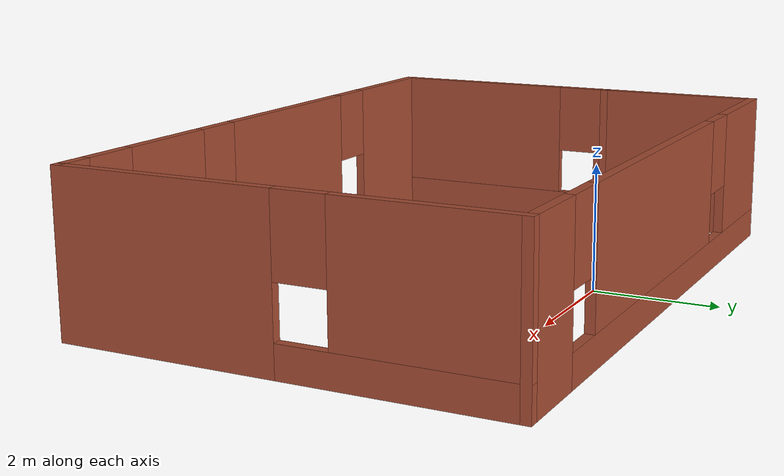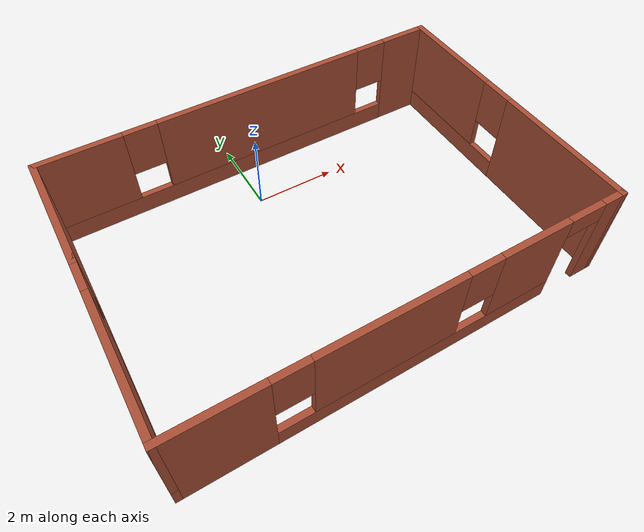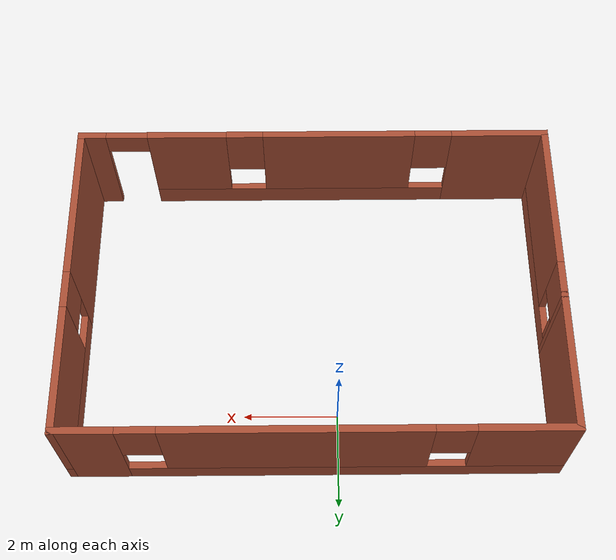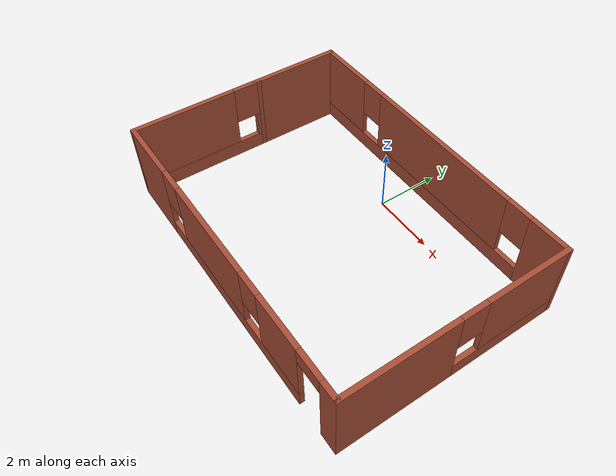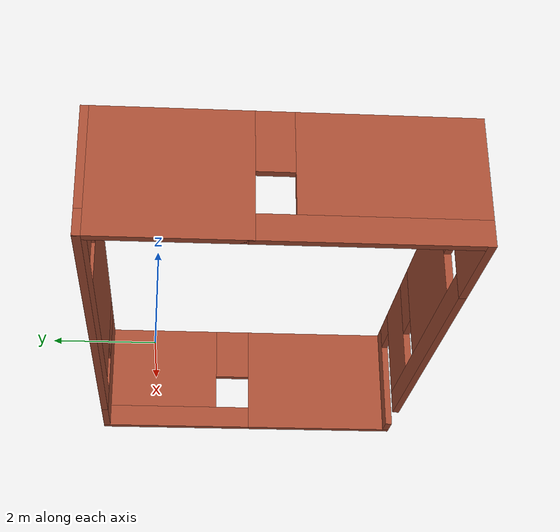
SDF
<?xml version='1.0'?>
<sdf version='1.7'>
  <model name='building_editor'>
    <pose>0.484194 -2.19185 0 0 -0 0</pose>
    <link name='Wall_16'>
      <pose>-5.05 -1.375 0 0 -0 -1.5708</pose>
      <visual name='Wall_16_Visual_0'>
        <pose>-2.05619 0 1.25 0 -0 0</pose>
        <geometry>
          <box>
            <size>0.137612 0.15 2.5</size>
          </box>
        </geometry>
        <material>
          <script>
            <uri>file://media/materials/scripts/gazebo.material</uri>
            <name>Gazebo/Bricks</name>
          </script>
          <ambient>1 1 1 1</ambient>
        </material>
        <meta>
          <layer>0</layer>
        </meta>
      </visual>
      <collision name='Wall_16_Collision_0'>
        <geometry>
          <box>
            <size>0.137612 0.15 2.5</size>
          </box>
        </geometry>
        <pose>-2.05619 0 1.25 0 -0 0</pose>
      </collision>
      <visual name='Wall_16_Visual_1'>
        <pose>0.068806 0 0.25 0 -0 0</pose>
        <geometry>
          <box>
            <size>4.11239 0.15 0.5</size>
          </box>
        </geometry>
        <material>
          <script>
            <uri>file://media/materials/scripts/gazebo.material</uri>
            <name>Gazebo/Bricks</name>
          </script>
          <ambient>1 1 1 1</ambient>
        </material>
        <meta>
          <layer>0</layer>
        </meta>
      </visual>
      <collision name='Wall_16_Collision_1'>
        <geometry>
          <box>
            <size>4.11239 0.15 0.5</size>
          </box>
        </geometry>
        <pose>0.068806 0 0.25 0 -0 0</pose>
      </collision>
      <visual name='Wall_16_Visual_2'>
        <pose>0.468806 0 1.5 0 -0 0</pose>
        <geometry>
          <box>
            <size>3.31239 0.15 2</size>
          </box>
        </geometry>
        <material>
          <script>
            <uri>file://media/materials/scripts/gazebo.material</uri>
            <name>Gazebo/Bricks</name>
          </script>
          <ambient>1 1 1 1</ambient>
        </material>
        <meta>
          <layer>0</layer>
        </meta>
      </visual>
      <collision name='Wall_16_Collision_2'>
        <geometry>
          <box>
            <size>3.31239 0.15 2</size>
          </box>
        </geometry>
        <pose>0.468806 0 1.5 0 -0 0</pose>
      </collision>
      <visual name='Wall_16_Visual_3'>
        <pose>-1.58739 0 1.9 0 -0 0</pose>
        <geometry>
          <box>
            <size>0.8 0.15 1.2</size>
          </box>
        </geometry>
        <material>
          <script>
            <uri>file://media/materials/scripts/gazebo.material</uri>
            <name>Gazebo/Bricks</name>
          </script>
          <ambient>1 1 1 1</ambient>
        </material>
        <meta>
          <layer>0</layer>
        </meta>
      </visual>
      <collision name='Wall_16_Collision_3'>
        <geometry>
          <box>
            <size>0.8 0.15 1.2</size>
          </box>
        </geometry>
        <pose>-1.58739 0 1.9 0 -0 0</pose>
      </collision>
    </link>
    <link name='Wall_17'>
      <pose>0 -3.425 0 0 -0 0</pose>
      <visual name='Wall_17_Visual_0'>
        <pose>-4.07314 0 1.25 0 -0 0</pose>
        <geometry>
          <box>
            <size>2.10371 0.15 2.5</size>
          </box>
        </geometry>
        <material>
          <script>
            <uri>file://media/materials/scripts/gazebo.material</uri>
            <name>Gazebo/Bricks</name>
          </script>
          <ambient>1 1 1 1</ambient>
        </material>
        <meta>
          <layer>0</layer>
        </meta>
      </visual>
      <collision name='Wall_17_Collision_0'>
        <geometry>
          <box>
            <size>2.10371 0.15 2.5</size>
          </box>
        </geometry>
        <pose>-4.07314 0 1.25 0 -0 0</pose>
      </collision>
      <visual name='Wall_17_Visual_1'>
        <pose>4.81923 0 1.25 0 -0 0</pose>
        <geometry>
          <box>
            <size>0.61154 0.15 2.5</size>
          </box>
        </geometry>
        <material>
          <script>
            <uri>file://media/materials/scripts/gazebo.material</uri>
            <name>Gazebo/Bricks</name>
          </script>
          <ambient>1 1 1 1</ambient>
        </material>
        <meta>
          <layer>0</layer>
        </meta>
      </visual>
      <collision name='Wall_17_Collision_1'>
        <geometry>
          <box>
            <size>0.61154 0.15 2.5</size>
          </box>
        </geometry>
        <pose>4.81923 0 1.25 0 -0 0</pose>
      </collision>
      <visual name='Wall_17_Visual_2'>
        <pose>0.296087 0 0.25 0 -0 0</pose>
        <geometry>
          <box>
            <size>6.63475 0.15 0.5</size>
          </box>
        </geometry>
        <material>
          <script>
            <uri>file://media/materials/scripts/gazebo.material</uri>
            <name>Gazebo/Bricks</name>
          </script>
          <ambient>1 1 1 1</ambient>
        </material>
        <meta>
          <layer>0</layer>
        </meta>
      </visual>
      <collision name='Wall_17_Collision_2'>
        <geometry>
          <box>
            <size>6.63475 0.15 0.5</size>
          </box>
        </geometry>
        <pose>0.296087 0 0.25 0 -0 0</pose>
      </collision>
      <visual name='Wall_17_Visual_3'>
        <pose>-0.562662 0 1.5 0 -0 0</pose>
        <geometry>
          <box>
            <size>3.31725 0.15 2</size>
          </box>
        </geometry>
        <material>
          <script>
            <uri>file://media/materials/scripts/gazebo.material</uri>
            <name>Gazebo/Bricks</name>
          </script>
          <ambient>1 1 1 1</ambient>
        </material>
        <meta>
          <layer>0</layer>
        </meta>
      </visual>
      <collision name='Wall_17_Collision_3'>
        <geometry>
          <box>
            <size>3.31725 0.15 2</size>
          </box>
        </geometry>
        <pose>-0.562662 0 1.5 0 -0 0</pose>
      </collision>
      <visual name='Wall_17_Visual_4'>
        <pose>2.75471 0 1.5 0 -0 0</pose>
        <geometry>
          <box>
            <size>1.7175 0.15 2</size>
          </box>
        </geometry>
        <material>
          <script>
            <uri>file://media/materials/scripts/gazebo.material</uri>
            <name>Gazebo/Bricks</name>
          </script>
          <ambient>1 1 1 1</ambient>
        </material>
        <meta>
          <layer>0</layer>
        </meta>
      </visual>
      <collision name='Wall_17_Collision_4'>
        <geometry>
          <box>
            <size>1.7175 0.15 2</size>
          </box>
        </geometry>
        <pose>2.75471 0 1.5 0 -0 0</pose>
      </collision>
      <visual name='Wall_17_Visual_5'>
        <pose>-2.62129 0 1.9 0 -0 0</pose>
        <geometry>
          <box>
            <size>0.8 0.15 1.2</size>
          </box>
        </geometry>
        <material>
          <script>
            <uri>file://media/materials/scripts/gazebo.material</uri>
            <name>Gazebo/Bricks</name>
          </script>
          <ambient>1 1 1 1</ambient>
        </material>
        <meta>
          <layer>0</layer>
        </meta>
      </visual>
      <collision name='Wall_17_Collision_5'>
        <geometry>
          <box>
            <size>0.8 0.15 1.2</size>
          </box>
        </geometry>
        <pose>-2.62129 0 1.9 0 -0 0</pose>
      </collision>
      <visual name='Wall_17_Visual_6'>
        <pose>1.49596 0 1.9 0 -0 0</pose>
        <geometry>
          <box>
            <size>0.8 0.15 1.2</size>
          </box>
        </geometry>
        <material>
          <script>
            <uri>file://media/materials/scripts/gazebo.material</uri>
            <name>Gazebo/Bricks</name>
          </script>
          <ambient>1 1 1 1</ambient>
        </material>
        <meta>
          <layer>0</layer>
        </meta>
      </visual>
      <collision name='Wall_17_Collision_6'>
        <geometry>
          <box>
            <size>0.8 0.15 1.2</size>
          </box>
        </geometry>
        <pose>1.49596 0 1.9 0 -0 0</pose>
      </collision>
      <visual name='Wall_17_Visual_7'>
        <pose>4.06346 0 2.25 0 -0 0</pose>
        <geometry>
          <box>
            <size>0.9 0.15 0.5</size>
          </box>
        </geometry>
        <material>
          <script>
            <uri>file://media/materials/scripts/gazebo.material</uri>
            <name>Gazebo/Bricks</name>
          </script>
          <ambient>1 1 1 1</ambient>
        </material>
        <meta>
          <layer>0</layer>
        </meta>
      </visual>
      <collision name='Wall_17_Collision_7'>
        <geometry>
          <box>
            <size>0.9 0.15 0.5</size>
          </box>
        </geometry>
        <pose>4.06346 0 2.25 0 -0 0</pose>
      </collision>
    </link>
    <link name='Wall_18'>
      <pose>5.05 0 0 0 -0 1.5708</pose>
      <visual name='Wall_18_Visual_0'>
        <pose>-1.76285 0 1.25 0 -0 0</pose>
        <geometry>
          <box>
            <size>3.4743 0.15 2.5</size>
          </box>
        </geometry>
        <material>
          <script>
            <uri>file://media/materials/scripts/gazebo.material</uri>
            <name>Gazebo/Bricks</name>
          </script>
          <ambient>1 1 1 1</ambient>
        </material>
        <meta>
          <layer>0</layer>
        </meta>
      </visual>
      <collision name='Wall_18_Collision_0'>
        <geometry>
          <box>
            <size>3.4743 0.15 2.5</size>
          </box>
        </geometry>
        <pose>-1.76285 0 1.25 0 -0 0</pose>
      </collision>
      <visual name='Wall_18_Visual_1'>
        <pose>1.73715 0 0.25 0 -0 0</pose>
        <geometry>
          <box>
            <size>3.5257 0.15 0.5</size>
          </box>
        </geometry>
        <material>
          <script>
            <uri>file://media/materials/scripts/gazebo.material</uri>
            <name>Gazebo/Bricks</name>
          </script>
          <ambient>1 1 1 1</ambient>
        </material>
        <meta>
          <layer>0</layer>
        </meta>
      </visual>
      <collision name='Wall_18_Collision_1'>
        <geometry>
          <box>
            <size>3.5257 0.15 0.5</size>
          </box>
        </geometry>
        <pose>1.73715 0 0.25 0 -0 0</pose>
      </collision>
      <visual name='Wall_18_Visual_2'>
        <pose>2.13715 0 1.5 0 -0 0</pose>
        <geometry>
          <box>
            <size>2.7257 0.15 2</size>
          </box>
        </geometry>
        <material>
          <script>
            <uri>file://media/materials/scripts/gazebo.material</uri>
            <name>Gazebo/Bricks</name>
          </script>
          <ambient>1 1 1 1</ambient>
        </material>
        <meta>
          <layer>0</layer>
        </meta>
      </visual>
      <collision name='Wall_18_Collision_2'>
        <geometry>
          <box>
            <size>2.7257 0.15 2</size>
          </box>
        </geometry>
        <pose>2.13715 0 1.5 0 -0 0</pose>
      </collision>
      <visual name='Wall_18_Visual_3'>
        <pose>0.374302 0 1.9 0 -0 0</pose>
        <geometry>
          <box>
            <size>0.8 0.15 1.2</size>
          </box>
        </geometry>
        <material>
          <script>
            <uri>file://media/materials/scripts/gazebo.material</uri>
            <name>Gazebo/Bricks</name>
          </script>
          <ambient>1 1 1 1</ambient>
        </material>
        <meta>
          <layer>0</layer>
        </meta>
      </visual>
      <collision name='Wall_18_Collision_3'>
        <geometry>
          <box>
            <size>0.8 0.15 1.2</size>
          </box>
        </geometry>
        <pose>0.374302 0 1.9 0 -0 0</pose>
      </collision>
    </link>
    <link name='Wall_19'>
      <pose>0 3.425 0 0 -0 3.14159</pose>
      <visual name='Wall_19_Visual_0'>
        <pose>-4.48197 0 1.25 0 -0 0</pose>
        <geometry>
          <box>
            <size>1.28607 0.15 2.5</size>
          </box>
        </geometry>
        <material>
          <script>
            <uri>file://media/materials/scripts/gazebo.material</uri>
            <name>Gazebo/Bricks</name>
          </script>
          <ambient>1 1 1 1</ambient>
        </material>
        <meta>
          <layer>0</layer>
        </meta>
      </visual>
      <collision name='Wall_19_Collision_0'>
        <geometry>
          <box>
            <size>1.28607 0.15 2.5</size>
          </box>
        </geometry>
        <pose>-4.48197 0 1.25 0 -0 0</pose>
      </collision>
      <visual name='Wall_19_Visual_1'>
        <pose>0.643033 0 0.25 0 -0 0</pose>
        <geometry>
          <box>
            <size>8.96393 0.15 0.5</size>
          </box>
        </geometry>
        <material>
          <script>
            <uri>file://media/materials/scripts/gazebo.material</uri>
            <name>Gazebo/Bricks</name>
          </script>
          <ambient>1 1 1 1</ambient>
        </material>
        <meta>
          <layer>0</layer>
        </meta>
      </visual>
      <collision name='Wall_19_Collision_1'>
        <geometry>
          <box>
            <size>8.96393 0.15 0.5</size>
          </box>
        </geometry>
        <pose>0.643033 0 0.25 0 -0 0</pose>
      </collision>
      <visual name='Wall_19_Visual_2'>
        <pose>-0.374128 0 1.5 0 -0 0</pose>
        <geometry>
          <box>
            <size>5.32961 0.15 2</size>
          </box>
        </geometry>
        <material>
          <script>
            <uri>file://media/materials/scripts/gazebo.material</uri>
            <name>Gazebo/Bricks</name>
          </script>
          <ambient>1 1 1 1</ambient>
        </material>
        <meta>
          <layer>0</layer>
        </meta>
      </visual>
      <collision name='Wall_19_Collision_2'>
        <geometry>
          <box>
            <size>5.32961 0.15 2</size>
          </box>
        </geometry>
        <pose>-0.374128 0 1.5 0 -0 0</pose>
      </collision>
      <visual name='Wall_19_Visual_3'>
        <pose>4.10784 0 1.5 0 -0 0</pose>
        <geometry>
          <box>
            <size>2.03432 0.15 2</size>
          </box>
        </geometry>
        <material>
          <script>
            <uri>file://media/materials/scripts/gazebo.material</uri>
            <name>Gazebo/Bricks</name>
          </script>
          <ambient>1 1 1 1</ambient>
        </material>
        <meta>
          <layer>0</layer>
        </meta>
      </visual>
      <collision name='Wall_19_Collision_3'>
        <geometry>
          <box>
            <size>2.03432 0.15 2</size>
          </box>
        </geometry>
        <pose>4.10784 0 1.5 0 -0 0</pose>
      </collision>
      <visual name='Wall_19_Visual_4'>
        <pose>-3.43893 0 1.9 0 -0 0</pose>
        <geometry>
          <box>
            <size>0.8 0.15 1.2</size>
          </box>
        </geometry>
        <material>
          <script>
            <uri>file://media/materials/scripts/gazebo.material</uri>
            <name>Gazebo/Bricks</name>
          </script>
          <ambient>1 1 1 1</ambient>
        </material>
        <meta>
          <layer>0</layer>
        </meta>
      </visual>
      <collision name='Wall_19_Collision_4'>
        <geometry>
          <box>
            <size>0.8 0.15 1.2</size>
          </box>
        </geometry>
        <pose>-3.43893 0 1.9 0 -0 0</pose>
      </collision>
      <visual name='Wall_19_Visual_5'>
        <pose>2.69068 0 1.9 0 -0 0</pose>
        <geometry>
          <box>
            <size>0.8 0.15 1.2</size>
          </box>
        </geometry>
        <material>
          <script>
            <uri>file://media/materials/scripts/gazebo.material</uri>
            <name>Gazebo/Bricks</name>
          </script>
          <ambient>1 1 1 1</ambient>
        </material>
        <meta>
          <layer>0</layer>
        </meta>
      </visual>
      <collision name='Wall_19_Collision_5'>
        <geometry>
          <box>
            <size>0.8 0.15 1.2</size>
          </box>
        </geometry>
        <pose>2.69068 0 1.9 0 -0 0</pose>
      </collision>
    </link>
    <link name='Wall_20'>
      <collision name='Wall_20_Collision'>
        <geometry>
          <box>
            <size>3 0.15 2.5</size>
          </box>
        </geometry>
        <pose>0 0 1.25 0 -0 0</pose>
      </collision>
      <visual name='Wall_20_Visual'>
        <pose>0 0 1.25 0 -0 0</pose>
        <geometry>
          <box>
            <size>3 0.15 2.5</size>
          </box>
        </geometry>
        <material>
          <script>
            <uri>file://media/materials/scripts/gazebo.material</uri>
            <name>Gazebo/Bricks</name>
          </script>
          <ambient>1 1 1 1</ambient>
        </material>
        <meta>
          <layer>0</layer>
        </meta>
      </visual>
      <pose>-5.05 2 0 0 -0 -1.5708</pose>
    </link>
    <static>1</static>
  </model>
</sdf>
